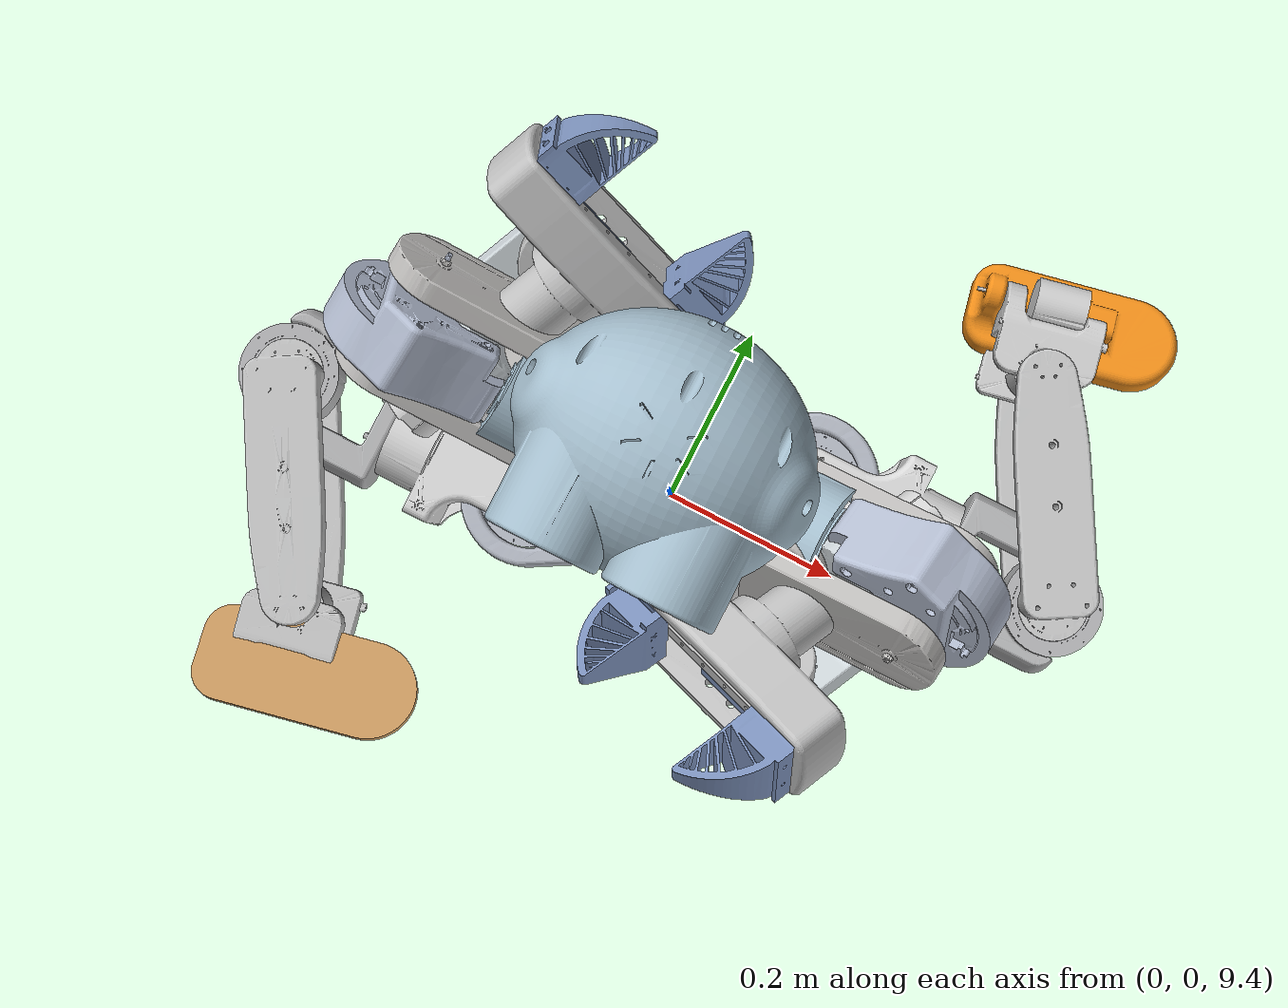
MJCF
<?xml version='1.0' encoding='utf-8'?>
<mujoco model="robot_7dof_arm">
  <compiler angle="radian" meshdir="meshes" />
  <!-- If timestep is increased, iterations reduced, etc. PPO will find a
	    to exploit the simulation and farm the healthy reward. Simulation
		stability matters a lot here. -->
	<option timestep="0.005" iterations="20" solver="Newton" noslip_iterations="5" integrator="RK4">
		<flag eulerdamp="enable" />
	</option>
  <default>
		<motor ctrlrange="-1 1" ctrllimited="true" gear="10" />
		<default class="visual">
			<geom type="mesh" condim="3" contype="0" conaffinity="0" group="2" />
		</default>
		<default class="collision">
			<geom type="capsule" friction=".7" mass="0" density="0" condim="3" contype="1" conaffinity="1" group="3" />
		</default>
	</default>
	<visual>
		<map force="0.1" zfar="30" />
		<rgba haze="0.15 0.25 0.35 1" />
		<global offwidth="2560" offheight="1440" elevation="-20" azimuth="120" />
	</visual>
  <asset>
    <mesh name="fused_component_upper_limb_assembly_7_dof_1_torso_1_top_skeleton_2_simple" file="fused_component_upper_limb_assembly_7_dof_1_torso_1_top_skeleton_2_simple.stl" />
    <mesh name="fused_component_upper_limb_assembly_7_dof_1_full_arm_7_dof_1_lower_arm_3_dof_1_hand_1_slide_2_simple" file="fused_component_upper_limb_assembly_7_dof_1_full_arm_7_dof_1_lower_arm_3_dof_1_hand_1_slide_2_simple.stl" />
    <mesh name="fused_component_upper_limb_assembly_7_dof_1_full_arm_7_dof_1_lower_arm_3_dof_1_hand_1_slide_1_simple" file="fused_component_upper_limb_assembly_7_dof_1_full_arm_7_dof_1_lower_arm_3_dof_1_hand_1_slide_1_simple.stl" />
    <mesh name="fused_component_upper_limb_assembly_7_dof_1_full_arm_7_dof_2_lower_arm_3_dof_1_hand_1_slide_2_simple" file="fused_component_upper_limb_assembly_7_dof_1_full_arm_7_dof_2_lower_arm_3_dof_1_hand_1_slide_2_simple.stl" />
    <mesh name="fused_component_upper_limb_assembly_7_dof_1_full_arm_7_dof_2_lower_arm_3_dof_1_hand_1_slide_1_simple" file="fused_component_upper_limb_assembly_7_dof_1_full_arm_7_dof_2_lower_arm_3_dof_1_hand_1_slide_1_simple.stl" />
    <mesh name="fused_component_upper_limb_assembly_7_dof_1_full_arm_7_dof_1_lower_arm_3_dof_1_rmd_x4_24_mock_3_inner_rmd_x4_24_1_simple" file="fused_component_upper_limb_assembly_7_dof_1_full_arm_7_dof_1_lower_arm_3_dof_1_rmd_x4_24_mock_3_inner_rmd_x4_24_1_simple.stl" />
    <mesh name="fused_component_upper_limb_assembly_7_dof_1_full_arm_7_dof_2_lower_arm_3_dof_1_rmd_x4_24_mock_3_inner_rmd_x4_24_1_simple" file="fused_component_upper_limb_assembly_7_dof_1_full_arm_7_dof_2_lower_arm_3_dof_1_rmd_x4_24_mock_3_inner_rmd_x4_24_1_simple.stl" />
    <mesh name="fused_component_lower_limbs_1_left_foot_1_rmd_x4_24_mock_1_inner_rmd_x4_24_1_simple" file="fused_component_lower_limbs_1_left_foot_1_rmd_x4_24_mock_1_inner_rmd_x4_24_1_simple.stl" />
    <mesh name="fused_component_lower_limbs_1_right_foot_1_rmd_x4_24_mock_1_inner_rmd_x4_24_1_simple" file="fused_component_lower_limbs_1_right_foot_1_rmd_x4_24_mock_1_inner_rmd_x4_24_1_simple.stl" />
    <mesh name="fused_component_lower_limbs_1_leg_assembly_1_rmd_x4_24_mock_1_outer_rmd_x4_24_1_simple" file="fused_component_lower_limbs_1_leg_assembly_1_rmd_x4_24_mock_1_outer_rmd_x4_24_1_simple.stl" />
    <mesh name="fused_component_lower_limbs_1_leg_assembly_2_rmd_x4_24_mock_1_outer_rmd_x4_24_1_simple" file="fused_component_lower_limbs_1_leg_assembly_2_rmd_x4_24_mock_1_outer_rmd_x4_24_1_simple.stl" />
    <mesh name="fused_component_upper_limb_assembly_7_dof_1_full_arm_7_dof_1_lower_arm_3_dof_1_rmd_x4_24_mock_2_inner_rmd_x4_24_1_simple" file="fused_component_upper_limb_assembly_7_dof_1_full_arm_7_dof_1_lower_arm_3_dof_1_rmd_x4_24_mock_2_inner_rmd_x4_24_1_simple.stl" />
    <mesh name="fused_component_upper_limb_assembly_7_dof_1_full_arm_7_dof_2_lower_arm_3_dof_1_rmd_x4_24_mock_2_inner_rmd_x4_24_1_simple" file="fused_component_upper_limb_assembly_7_dof_1_full_arm_7_dof_2_lower_arm_3_dof_1_rmd_x4_24_mock_2_inner_rmd_x4_24_1_simple.stl" />
    <mesh name="fused_component_lower_limbs_1_leg_assembly_1_rmd_x8_90_mock_3_inner_rmd_x8_90_1_simple" file="fused_component_lower_limbs_1_leg_assembly_1_rmd_x8_90_mock_3_inner_rmd_x8_90_1_simple.stl" />
    <mesh name="fused_component_upper_limb_assembly_7_dof_1_full_arm_7_dof_1_lower_arm_3_dof_1_rmd_x4_24_mock_1_outer_rmd_x4_24_1_simple" file="fused_component_upper_limb_assembly_7_dof_1_full_arm_7_dof_1_lower_arm_3_dof_1_rmd_x4_24_mock_1_outer_rmd_x4_24_1_simple.stl" />
    <mesh name="fused_component_upper_limb_assembly_7_dof_1_full_arm_7_dof_2_lower_arm_3_dof_1_rmd_x4_24_mock_1_outer_rmd_x4_24_1_simple" file="fused_component_upper_limb_assembly_7_dof_1_full_arm_7_dof_2_lower_arm_3_dof_1_rmd_x4_24_mock_1_outer_rmd_x4_24_1_simple.stl" />
    <mesh name="fused_component_lower_limbs_1_leg_assembly_2_rmd_x8_90_mock_3_inner_rmd_x8_90_1_simple" file="fused_component_lower_limbs_1_leg_assembly_2_rmd_x8_90_mock_3_inner_rmd_x8_90_1_simple.stl" />
    <mesh name="fused_component_lower_limbs_1_leg_assembly_1_rmd_x8_90_mock_2_inner_rmd_x8_90_1_simple" file="fused_component_lower_limbs_1_leg_assembly_1_rmd_x8_90_mock_2_inner_rmd_x8_90_1_simple.stl" />
    <mesh name="fused_component_upper_limb_assembly_7_dof_1_full_arm_7_dof_1_upper_left_arm_1_rmd_x4_24_mock_2_inner_rmd_x4_24_1_simple" file="fused_component_upper_limb_assembly_7_dof_1_full_arm_7_dof_1_upper_left_arm_1_rmd_x4_24_mock_2_inner_rmd_x4_24_1_simple.stl" />
    <mesh name="fused_component_upper_limb_assembly_7_dof_1_full_arm_7_dof_2_upper_left_arm_1_rmd_x4_24_mock_2_inner_rmd_x4_24_1_simple" file="fused_component_upper_limb_assembly_7_dof_1_full_arm_7_dof_2_upper_left_arm_1_rmd_x4_24_mock_2_inner_rmd_x4_24_1_simple.stl" />
    <mesh name="fused_component_lower_limbs_1_leg_assembly_2_rmd_x8_90_mock_2_inner_rmd_x8_90_1_simple" file="fused_component_lower_limbs_1_leg_assembly_2_rmd_x8_90_mock_2_inner_rmd_x8_90_1_simple.stl" />
    <mesh name="fused_component_lower_limbs_1_leg_assembly_1_rmd_x8_90_mock_1_inner_rmd_x8_90_1_simple" file="fused_component_lower_limbs_1_leg_assembly_1_rmd_x8_90_mock_1_inner_rmd_x8_90_1_simple.stl" />
    <mesh name="fused_component_upper_limb_assembly_7_dof_1_full_arm_7_dof_1_upper_left_arm_1_rmd_x4_24_mock_1_outer_rmd_x4_24_1_simple" file="fused_component_upper_limb_assembly_7_dof_1_full_arm_7_dof_1_upper_left_arm_1_rmd_x4_24_mock_1_outer_rmd_x4_24_1_simple.stl" />
    <mesh name="fused_component_upper_limb_assembly_7_dof_1_full_arm_7_dof_2_upper_left_arm_1_rmd_x4_24_mock_1_outer_rmd_x4_24_1_simple" file="fused_component_upper_limb_assembly_7_dof_1_full_arm_7_dof_2_upper_left_arm_1_rmd_x4_24_mock_1_outer_rmd_x4_24_1_simple.stl" />
    <mesh name="fused_component_lower_limbs_1_leg_assembly_2_rmd_x8_90_mock_1_inner_rmd_x8_90_1_simple" file="fused_component_lower_limbs_1_leg_assembly_2_rmd_x8_90_mock_1_inner_rmd_x8_90_1_simple.stl" />
    <mesh name="fused_component_lower_limbs_1_leg_assembly_1_rmd_x12_150_mock_1_inner_x12_150_1_simple" file="fused_component_lower_limbs_1_leg_assembly_1_rmd_x12_150_mock_1_inner_x12_150_1_simple.stl" />
    <mesh name="fused_component_lower_limbs_1_leg_assembly_2_rmd_x12_150_mock_1_inner_x12_150_1_simple" file="fused_component_lower_limbs_1_leg_assembly_2_rmd_x12_150_mock_1_inner_x12_150_1_simple.stl" />
    <mesh name="fused_component_upper_limb_assembly_7_dof_1_full_arm_7_dof_1_upper_left_arm_1_rmd_x8_90_mock_2_inner_rmd_x8_90_1_simple" file="fused_component_upper_limb_assembly_7_dof_1_full_arm_7_dof_1_upper_left_arm_1_rmd_x8_90_mock_2_inner_rmd_x8_90_1_simple.stl" />
    <mesh name="fused_component_upper_limb_assembly_7_dof_1_full_arm_7_dof_2_upper_left_arm_1_rmd_x8_90_mock_2_inner_rmd_x8_90_1_simple" file="fused_component_upper_limb_assembly_7_dof_1_full_arm_7_dof_2_upper_left_arm_1_rmd_x8_90_mock_2_inner_rmd_x8_90_1_simple.stl" />
    <mesh name="fused_component_upper_limb_assembly_7_dof_1_torso_1_rmd_x8_90_mock_1_inner_rmd_x8_90_1_simple" file="fused_component_upper_limb_assembly_7_dof_1_torso_1_rmd_x8_90_mock_1_inner_rmd_x8_90_1_simple.stl" />
    <mesh name="fused_component_upper_limb_assembly_7_dof_1_full_arm_7_dof_1_upper_left_arm_1_rmd_x8_90_mock_1_inner_rmd_x8_90_1_simple" file="fused_component_upper_limb_assembly_7_dof_1_full_arm_7_dof_1_upper_left_arm_1_rmd_x8_90_mock_1_inner_rmd_x8_90_1_simple.stl" />
    <mesh name="fused_component_upper_limb_assembly_7_dof_1_full_arm_7_dof_2_upper_left_arm_1_rmd_x8_90_mock_1_inner_rmd_x8_90_1_simple" file="fused_component_upper_limb_assembly_7_dof_1_full_arm_7_dof_2_upper_left_arm_1_rmd_x8_90_mock_1_inner_rmd_x8_90_1_simple.stl" />
    <texture name="grid" type="2d" builtin="checker" width="512" height="512" rgb1=".1 .2 .3" rgb2=".2 .3 .4" />
		<material name="grid" texture="grid" texrepeat="1 1" texuniform="true" reflectance=".2" />
  </asset>
  <worldbody>
    <geom name="floor" size="0 0 0.01" type="plane" material="grid" condim="3" />
		<light name="spotlight" mode="targetbodycom" target="root" diffuse=".8 .8 .8" specular="0.3 0.3 0.3" pos="0 -6 4" cutoff="30" />
    <body name="root" pos="0 0 10" quat="1 0 0 0"><geom type="mesh" rgba="0.64455 0.742648 0.801487 1" mesh="fused_component_upper_limb_assembly_7_dof_1_torso_1_top_skeleton_2_simple" />
      <camera name="front" pos="0 -3 1" xyaxes="1 0 0 0 1 2" mode="trackcom"/>
			<camera name="side" pos="-2.893 -1.330 1.257" xyaxes="0.405 -0.914 0.000 0.419 0.186 0.889" mode="trackcom"/>
      <freejoint name="root" />
    <body name="fused_component_upper_limb_assembly_7_dof_1_full_arm_7_dof_2_upper_left_arm_1_rmd_x8_90_mock_1_inner_rmd_x8_90_1" pos="0.151411 0.000437102 0.0219782" quat="0.566935 -0.422593 0.422593 -0.566935">
      <joint name="shoulder pitch" pos="0 0 0" axis="0 0 -1" range="-3.14159 3.14159" actuatorfrcrange="-80 80" />
      <geom type="mesh" rgba="0.71094 0.745901 0.822262 1" mesh="fused_component_upper_limb_assembly_7_dof_1_full_arm_7_dof_2_upper_left_arm_1_rmd_x8_90_mock_1_inner_rmd_x8_90_1_simple" />
      <body name="fused_component_upper_limb_assembly_7_dof_1_full_arm_7_dof_2_upper_left_arm_1_rmd_x8_90_mock_2_inner_rmd_x8_90_1" pos="-0.0197021 0.011375 0.087" quat="0.683013 -0.183013 -0.683013 -0.183013">
        <joint name="shoulder yaw" pos="0 0 0" axis="0 0 -1" range="0.977384 5.3058" actuatorfrcrange="-80 80" />
        <geom type="mesh" rgba="0.756258 0.749475 0.741439 1" mesh="fused_component_upper_limb_assembly_7_dof_1_full_arm_7_dof_2_upper_left_arm_1_rmd_x8_90_mock_2_inner_rmd_x8_90_1_simple" />
        <body name="fused_component_upper_limb_assembly_7_dof_1_full_arm_7_dof_2_upper_left_arm_1_rmd_x4_24_mock_1_outer_rmd_x4_24_1" pos="-0.1898 -1.96539e-09 -0.02275" quat="0.707107 1.64085e-08 -0.707107 1.64085e-08">
          <joint name="shoulder roll" pos="0 0 0" axis="0 0 -1" range="-3.14159 3.14159" actuatorfrcrange="-80 80" />
          <geom type="mesh" rgba="0.836582 0.836597 0.836605 1" mesh="fused_component_upper_limb_assembly_7_dof_1_full_arm_7_dof_2_upper_left_arm_1_rmd_x4_24_mock_1_outer_rmd_x4_24_1_simple" />
          <body name="fused_component_upper_limb_assembly_7_dof_1_full_arm_7_dof_2_upper_left_arm_1_rmd_x4_24_mock_2_inner_rmd_x4_24_1" pos="-2.94744e-10 0.009 0.134" quat="1.89469e-08 -1.89469e-08 -0.707107 0.707107">
            <joint name="elbow pitch" pos="0 0 0" axis="0 0 -1" range="1.44862 5.44543" actuatorfrcrange="-80 80" />
            <geom type="mesh" rgba="0.753073 0.754107 0.754694 1" mesh="fused_component_upper_limb_assembly_7_dof_1_full_arm_7_dof_2_upper_left_arm_1_rmd_x4_24_mock_2_inner_rmd_x4_24_1_simple" />
            <body name="fused_component_upper_limb_assembly_7_dof_1_full_arm_7_dof_2_lower_arm_3_dof_1_rmd_x4_24_mock_1_outer_rmd_x4_24_1" pos="0.0499362 0.156003 0.009" quat="0.109092 0.109092 0.698641 0.698641">
              <joint name="wrist roll" pos="0 0 0" axis="0 0 -1" range="-3.14159 3.14159" actuatorfrcrange="-80 80" />
              <geom type="mesh" rgba="0.85 0.85 0.85 1" mesh="fused_component_upper_limb_assembly_7_dof_1_full_arm_7_dof_2_lower_arm_3_dof_1_rmd_x4_24_mock_1_outer_rmd_x4_24_1_simple" />
              <body name="fused_component_upper_limb_assembly_7_dof_1_full_arm_7_dof_2_lower_arm_3_dof_1_rmd_x4_24_mock_2_inner_rmd_x4_24_1" pos="0.1135 -5.61782e-09 0.0895" quat="0.5 0.5 0.5 0.5">
                <joint name="wrist pitch" pos="0 0 0" axis="0 0 -1" range="-3.14159 3.14159" actuatorfrcrange="-80 80" />
                <geom type="mesh" rgba="0.812745 0.842157 0.858824 1" mesh="fused_component_upper_limb_assembly_7_dof_1_full_arm_7_dof_2_lower_arm_3_dof_1_rmd_x4_24_mock_2_inner_rmd_x4_24_1_simple" />
                <body name="fused_component_upper_limb_assembly_7_dof_1_full_arm_7_dof_2_lower_arm_3_dof_1_rmd_x4_24_mock_3_inner_rmd_x4_24_1" pos="-0.0985 2.6393e-09 -0.1135" quat="9.47343e-09 -0.707107 9.47343e-09 0.707107">
                  <joint name="wrist yaw" pos="0 0 0" axis="0 0 -1" range="-3.14159 3.14159" actuatorfrcrange="-80 80" />
                  <geom type="mesh" rgba="0.752673 0.753057 0.753287 1" mesh="fused_component_upper_limb_assembly_7_dof_1_full_arm_7_dof_2_lower_arm_3_dof_1_rmd_x4_24_mock_3_inner_rmd_x4_24_1_simple" />
                  <body name="fused_component_upper_limb_assembly_7_dof_1_full_arm_7_dof_2_lower_arm_3_dof_1_hand_1_slide_1" pos="0.0805 -0.1 -0.0985" quat="4.92255e-08 -4.92255e-08 -0.707107 0.707107">
                    <joint name="left hand right finger" pos="0 0 0" axis="0 0 -1" type="slide" range="0 0.051" actuatorfrcrange="-80 80" />
                    <geom type="mesh" rgba="0.493359 0.579282 0.748506 1" mesh="fused_component_upper_limb_assembly_7_dof_1_full_arm_7_dof_2_lower_arm_3_dof_1_hand_1_slide_1_simple" />
                  </body>
                  <body name="fused_component_upper_limb_assembly_7_dof_1_full_arm_7_dof_2_lower_arm_3_dof_1_hand_1_slide_2" pos="0.0805 0.1 -0.0985" quat="4.92255e-08 4.92255e-08 0.707107 0.707107">
                    <joint name="left hand left finger" pos="0 0 0" axis="0 0 -1" type="slide" range="-0.051 0" actuatorfrcrange="-80 80" />
                    <geom type="mesh" rgba="0.493359 0.579282 0.748506 1" mesh="fused_component_upper_limb_assembly_7_dof_1_full_arm_7_dof_2_lower_arm_3_dof_1_hand_1_slide_2_simple" />
                  </body>
                </body>
              </body>
            </body>
          </body>
        </body>
      </body>
    </body>
    <body name="fused_component_upper_limb_assembly_7_dof_1_full_arm_7_dof_1_upper_left_arm_1_rmd_x8_90_mock_1_inner_rmd_x8_90_1" pos="-0.151411 0.000437101 0.0219782" quat="0.566935 -0.422593 -0.422593 0.566935">
      <joint name="right shoulder pitch" pos="0 0 0" axis="0 0 -1" range="-3.14159 3.14159" actuatorfrcrange="-80 80" />
      <geom type="mesh" rgba="0.71094 0.745901 0.822262 1" mesh="fused_component_upper_limb_assembly_7_dof_1_full_arm_7_dof_1_upper_left_arm_1_rmd_x8_90_mock_1_inner_rmd_x8_90_1_simple" />
      <body name="fused_component_upper_limb_assembly_7_dof_1_full_arm_7_dof_1_upper_left_arm_1_rmd_x8_90_mock_2_inner_rmd_x8_90_1" pos="-0.0197021 0.011375 0.087" quat="0.683013 -0.183013 -0.683013 -0.183013">
        <joint name="right shoulder yaw" pos="0 0 0" axis="0 0 -1" range="0.977384 5.3058" actuatorfrcrange="-80 80" />
        <geom type="mesh" rgba="0.756258 0.749475 0.741439 1" mesh="fused_component_upper_limb_assembly_7_dof_1_full_arm_7_dof_1_upper_left_arm_1_rmd_x8_90_mock_2_inner_rmd_x8_90_1_simple" />
        <body name="fused_component_upper_limb_assembly_7_dof_1_full_arm_7_dof_1_upper_left_arm_1_rmd_x4_24_mock_1_outer_rmd_x4_24_1" pos="-0.1898 -1.96539e-09 -0.02275" quat="0.707107 1.64085e-08 -0.707107 1.64085e-08">
          <joint name="right shoulder roll" pos="0 0 0" axis="0 0 -1" range="-3.14159 3.14159" actuatorfrcrange="-80 80" />
          <geom type="mesh" rgba="0.836582 0.836597 0.836605 1" mesh="fused_component_upper_limb_assembly_7_dof_1_full_arm_7_dof_1_upper_left_arm_1_rmd_x4_24_mock_1_outer_rmd_x4_24_1_simple" />
          <body name="fused_component_upper_limb_assembly_7_dof_1_full_arm_7_dof_1_upper_left_arm_1_rmd_x4_24_mock_2_inner_rmd_x4_24_1" pos="-2.94744e-10 0.009 0.134" quat="1.89469e-08 -1.89469e-08 -0.707107 0.707107">
            <joint name="right elbow pitch" pos="0 0 0" axis="0 0 -1" range="1.44862 5.44543" actuatorfrcrange="-80 80" />
            <geom type="mesh" rgba="0.753073 0.754107 0.754694 1" mesh="fused_component_upper_limb_assembly_7_dof_1_full_arm_7_dof_1_upper_left_arm_1_rmd_x4_24_mock_2_inner_rmd_x4_24_1_simple" />
            <body name="fused_component_upper_limb_assembly_7_dof_1_full_arm_7_dof_1_lower_arm_3_dof_1_rmd_x4_24_mock_1_outer_rmd_x4_24_1" pos="0.0499362 0.156003 0.009" quat="0.109092 0.109092 0.698641 0.698641">
              <joint name="right wrist roll" pos="0 0 0" axis="0 0 -1" range="-3.14159 3.14159" actuatorfrcrange="-80 80" />
              <geom type="mesh" rgba="0.85 0.85 0.85 1" mesh="fused_component_upper_limb_assembly_7_dof_1_full_arm_7_dof_1_lower_arm_3_dof_1_rmd_x4_24_mock_1_outer_rmd_x4_24_1_simple" />
              <body name="fused_component_upper_limb_assembly_7_dof_1_full_arm_7_dof_1_lower_arm_3_dof_1_rmd_x4_24_mock_2_inner_rmd_x4_24_1" pos="0.1135 -5.61782e-09 0.0895" quat="0.5 0.5 0.5 0.5">
                <joint name="right wrist pitch" pos="0 0 0" axis="0 0 -1" range="-3.14159 3.14159" actuatorfrcrange="-80 80" />
                <geom type="mesh" rgba="0.812745 0.842157 0.858824 1" mesh="fused_component_upper_limb_assembly_7_dof_1_full_arm_7_dof_1_lower_arm_3_dof_1_rmd_x4_24_mock_2_inner_rmd_x4_24_1_simple" />
                <body name="fused_component_upper_limb_assembly_7_dof_1_full_arm_7_dof_1_lower_arm_3_dof_1_rmd_x4_24_mock_3_inner_rmd_x4_24_1" pos="-0.0985 2.6393e-09 -0.1135" quat="9.47343e-09 -0.707107 9.47343e-09 0.707107">
                  <joint name="right wrist yaw" pos="0 0 0" axis="0 0 -1" range="-3.14159 3.14159" actuatorfrcrange="-80 80" />
                  <geom type="mesh" rgba="0.752673 0.753057 0.753287 1" mesh="fused_component_upper_limb_assembly_7_dof_1_full_arm_7_dof_1_lower_arm_3_dof_1_rmd_x4_24_mock_3_inner_rmd_x4_24_1_simple" />
                  <body name="fused_component_upper_limb_assembly_7_dof_1_full_arm_7_dof_1_lower_arm_3_dof_1_hand_1_slide_1" pos="0.0805 -0.1 -0.0985" quat="4.92255e-08 -4.92255e-08 -0.707107 0.707107">
                    <joint name="right hand right finger" pos="0 0 0" axis="0 0 -1" type="slide" range="0 0.051" actuatorfrcrange="-80 80" />
                    <geom type="mesh" rgba="0.493359 0.579282 0.748506 1" mesh="fused_component_upper_limb_assembly_7_dof_1_full_arm_7_dof_1_lower_arm_3_dof_1_hand_1_slide_1_simple" />
                  </body>
                  <body name="fused_component_upper_limb_assembly_7_dof_1_full_arm_7_dof_1_lower_arm_3_dof_1_hand_1_slide_2" pos="0.0805 0.1 -0.0985" quat="4.92255e-08 4.92255e-08 0.707107 0.707107">
                    <joint name="right hand left finger" pos="0 0 0" axis="0 0 -1" type="slide" range="-0.051 0" actuatorfrcrange="-80 80" />
                    <geom type="mesh" rgba="0.493359 0.579282 0.748506 1" mesh="fused_component_upper_limb_assembly_7_dof_1_full_arm_7_dof_1_lower_arm_3_dof_1_hand_1_slide_2_simple" />
                  </body>
                </body>
              </body>
            </body>
          </body>
        </body>
      </body>
    </body>
    <body name="fused_component_upper_limb_assembly_7_dof_1_torso_1_rmd_x8_90_mock_1_inner_rmd_x8_90_1" pos="-2.34973e-08 0.000437101 -0.351562" quat="1.64085e-08 -0.707107 0.707107 -1.64085e-08">
      <joint name="torso roll" pos="0 0 0" axis="0 0 -1" range="-3.14159 3.14159" actuatorfrcrange="-80 80" />
      <geom type="mesh" rgba="0.231704 0.380579 0.705754 1" mesh="fused_component_upper_limb_assembly_7_dof_1_torso_1_rmd_x8_90_mock_1_inner_rmd_x8_90_1_simple" />
      <body name="fused_component_lower_limbs_1_leg_assembly_2_rmd_x12_150_mock_1_inner_x12_150_1" pos="0.02225 0.0385381 0.131" quat="0.612372 0.353553 -0.612372 0.353553">
        <joint name="left hip pitch" pos="0 0 0" axis="0 0 -1" range="-4.71239 4.71239" actuatorfrcrange="-80 80" />
        <geom type="mesh" rgba="0.688116 0.706616 0.747024 1" mesh="fused_component_lower_limbs_1_leg_assembly_2_rmd_x12_150_mock_1_inner_x12_150_1_simple" />
        <body name="fused_component_lower_limbs_1_leg_assembly_2_rmd_x8_90_mock_1_inner_rmd_x8_90_1" pos="-0.0244382 -0.000630373 -0.1015" quat="0.5 0.5 -0.5 -0.5">
          <joint name="left hip yaw" pos="0 0 0" axis="0 0 -1" range="-3.14159 3.14159" actuatorfrcrange="-80 80" />
          <geom type="mesh" rgba="0.8365 0.836517 0.836553 1" mesh="fused_component_lower_limbs_1_leg_assembly_2_rmd_x8_90_mock_1_inner_rmd_x8_90_1_simple" />
          <body name="fused_component_lower_limbs_1_leg_assembly_2_rmd_x8_90_mock_2_inner_rmd_x8_90_1" pos="-0.07875 -0.136399 -0.01965" quat="0.683013 0.683013 -0.183013 -0.183013">
            <joint name="left hip roll" pos="0 0 0" axis="0 0 -1" range="-3.14159 3.14159" actuatorfrcrange="-80 80" />
            <geom type="mesh" rgba="0.685312 0.687559 0.692465 1" mesh="fused_component_lower_limbs_1_leg_assembly_2_rmd_x8_90_mock_2_inner_rmd_x8_90_1_simple" />
            <body name="fused_component_lower_limbs_1_leg_assembly_2_rmd_x8_90_mock_3_inner_rmd_x8_90_1" pos="6.61991e-09 0.02065 0.127" quat="0.5 -0.5 0.5 0.5">
              <joint name="left knee pitch" pos="0 0 0" axis="0 0 -1" range="-3.14159 3.14159" actuatorfrcrange="-80 80" />
              <geom type="mesh" rgba="0.753371 0.754689 0.755183 1" mesh="fused_component_lower_limbs_1_leg_assembly_2_rmd_x8_90_mock_3_inner_rmd_x8_90_1_simple" />
              <body name="fused_component_lower_limbs_1_leg_assembly_2_rmd_x4_24_mock_1_outer_rmd_x4_24_1" pos="0.123 -0.213042 -0.0129" quat="2.60501e-08 -0.104528 0.994522 -3.67176e-08">
                <joint name="left ankle pitch" pos="0 0 0" axis="0 0 -1" range="-3.14159 3.14159" actuatorfrcrange="-80 80" />
                <geom type="mesh" rgba="0.753102 0.753102 0.753103 1" mesh="fused_component_lower_limbs_1_leg_assembly_2_rmd_x4_24_mock_1_outer_rmd_x4_24_1_simple" />
                <body name="fused_component_lower_limbs_1_right_foot_1_rmd_x4_24_mock_1_inner_rmd_x4_24_1" pos="-0.0135 -0.07155 0.01055" quat="0.5 0.5 0.5 0.5">
                  <joint name="left ankle roll" pos="0 0 0" axis="0 0 -1" range="-3.14159 3.14159" actuatorfrcrange="-80 80" />
                  <geom type="mesh" rgba="0.795129 0.603707 0.375245 1" mesh="fused_component_lower_limbs_1_right_foot_1_rmd_x4_24_mock_1_inner_rmd_x4_24_1_simple" />
                </body>
              </body>
            </body>
          </body>
        </body>
      </body>
      <body name="fused_component_lower_limbs_1_leg_assembly_1_rmd_x12_150_mock_1_inner_x12_150_1" pos="-0.02225 -0.0385381 0.131" quat="0.353553 -0.612372 -0.353553 -0.612372">
        <joint name="right hip pitch" pos="0 0 0" axis="0 0 -1" range="-4.71239 4.71239" actuatorfrcrange="-80 80" />
        <geom type="mesh" rgba="0.688116 0.706616 0.747024 1" mesh="fused_component_lower_limbs_1_leg_assembly_1_rmd_x12_150_mock_1_inner_x12_150_1_simple" />
        <body name="fused_component_lower_limbs_1_leg_assembly_1_rmd_x8_90_mock_1_inner_rmd_x8_90_1" pos="-0.0244382 -0.000630373 -0.1015" quat="0.5 0.5 -0.5 -0.5">
          <joint name="right hip yaw" pos="0 0 0" axis="0 0 -1" range="-3.14159 3.14159" actuatorfrcrange="-80 80" />
          <geom type="mesh" rgba="0.8365 0.836517 0.836553 1" mesh="fused_component_lower_limbs_1_leg_assembly_1_rmd_x8_90_mock_1_inner_rmd_x8_90_1_simple" />
          <body name="fused_component_lower_limbs_1_leg_assembly_1_rmd_x8_90_mock_2_inner_rmd_x8_90_1" pos="-0.07875 -0.136399 -0.01965" quat="0.683013 0.683013 -0.183013 -0.183013">
            <joint name="right hip roll" pos="0 0 0" axis="0 0 -1" range="-3.14159 3.14159" actuatorfrcrange="-80 80" />
            <geom type="mesh" rgba="0.685312 0.687559 0.692465 1" mesh="fused_component_lower_limbs_1_leg_assembly_1_rmd_x8_90_mock_2_inner_rmd_x8_90_1_simple" />
            <body name="fused_component_lower_limbs_1_leg_assembly_1_rmd_x8_90_mock_3_inner_rmd_x8_90_1" pos="6.61991e-09 0.02065 0.127" quat="0.5 -0.5 0.5 0.5">
              <joint name="right knee pitch" pos="0 0 0" axis="0 0 -1" range="-3.14159 3.14159" actuatorfrcrange="-80 80" />
              <geom type="mesh" rgba="0.753371 0.754689 0.755183 1" mesh="fused_component_lower_limbs_1_leg_assembly_1_rmd_x8_90_mock_3_inner_rmd_x8_90_1_simple" />
              <body name="fused_component_lower_limbs_1_leg_assembly_1_rmd_x4_24_mock_1_outer_rmd_x4_24_1" pos="0.123 -0.213042 -0.0129" quat="2.60501e-08 -0.104528 0.994522 -3.67176e-08">
                <joint name="right ankle pitch" pos="0 0 0" axis="0 0 -1" range="-3.14159 3.14159" actuatorfrcrange="-80 80" />
                <geom type="mesh" rgba="0.794118 0.794122 0.794124 1" mesh="fused_component_lower_limbs_1_leg_assembly_1_rmd_x4_24_mock_1_outer_rmd_x4_24_1_simple" />
                <body name="fused_component_lower_limbs_1_left_foot_1_rmd_x4_24_mock_1_inner_rmd_x4_24_1" pos="0.0135 -0.07155 0.01055" quat="0.5 -0.5 -0.5 0.5">
                  <joint name="right ankle roll" pos="0 0 0" axis="0 0 -1" range="-3.14159 3.14159" actuatorfrcrange="-80 80" />
                  <geom type="mesh" rgba="0.942494 0.5572 0.0988358 1" mesh="fused_component_lower_limbs_1_left_foot_1_rmd_x4_24_mock_1_inner_rmd_x4_24_1_simple" />
                </body>
              </body>
            </body>
          </body>
        </body>
      </body>
    </body>
  </body></worldbody>
  <actuator>
    <!-- Actuators for left leg joints -->
    <motor name="left_hip_pitch_motor" joint="left hip pitch" />
    <motor name="left_hip_yaw_motor" joint="left hip yaw" />
    <motor name="left_hip_roll_motor" joint="left hip roll" />
    <motor name="left_knee_pitch_motor" joint="left knee pitch" />
    <motor name="left_ankle_pitch_motor" joint="left ankle pitch" />
    <motor name="left_ankle_roll_motor" joint="left ankle roll" />

    <!-- Actuators for right leg joints -->
    <motor name="right_hip_pitch_motor" joint="right hip pitch" />
    <motor name="right_hip_yaw_motor" joint="right hip yaw" />
    <motor name="right_hip_roll_motor" joint="right hip roll" />
    <motor name="right_knee_pitch_motor" joint="right knee pitch" />
    <motor name="right_ankle_pitch_motor" joint="right ankle pitch" />
    <motor name="right_ankle_roll_motor" joint="right ankle roll" />
  </actuator>
  <keyframe>
    <key name="default" qpos='0.0 -0.126 2.12 1.89 -1.13 2.1 -1.23 0.0 0.0 0.0 0.0 -0.346 -0.251 0.377 -3.14 -0.437 0.911 -1.55 1.46 1.45 2.17 0.238 1.79 1.55 -1.67 1.04 2.01 0.44 1.79 0.0 0.0 0.0 0.0 0.0 0.0 0.0 0.0 0.0'/>
  </keyframe>

</mujoco>
